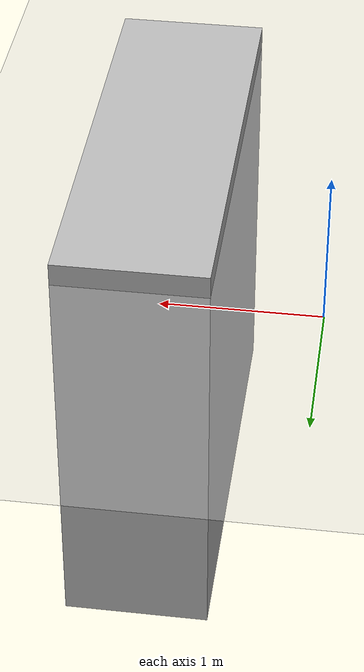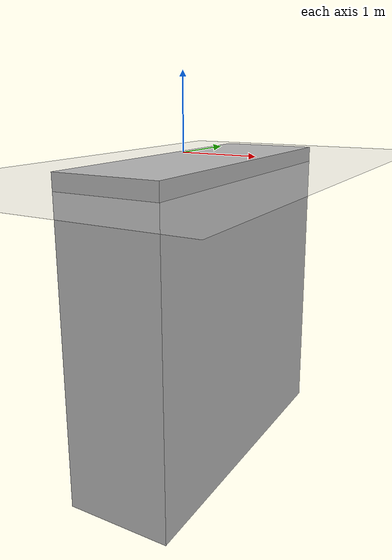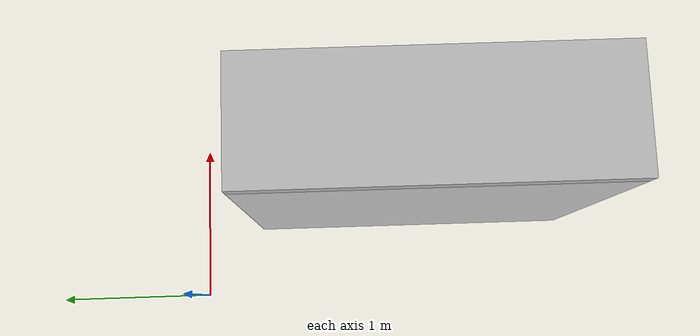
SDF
<?xml version="1.0" ?>
<sdf version='1.6'>
  <world name='default'>
    <gui>
      <plugin name="keyboard" filename="libKeyboardGUIPlugin.so"/>
    </gui>

    <light name='sun' type='directional'>
      <cast_shadows>1</cast_shadows>
      <pose frame=''>0 0 10 0 -0 0</pose>
      <diffuse>0.8 0.8 0.8 1</diffuse>
      <specular>0.2 0.2 0.2 1</specular>
      <attenuation>
        <range>1000</range>
        <constant>0.9</constant>
        <linear>0.01</linear>
        <quadratic>0.001</quadratic>
      </attenuation>
      <direction>-0.5 0.1 -0.9</direction>
    </light>

    <model name='ground_plane'>
      <static>1</static>
      <link name='link'>
        <collision name='collision'>
          <geometry>
            <plane>
              <normal>0 0 1</normal>
              <size>100 100</size>
            </plane>
          </geometry>
          <surface>
            <friction>
              <ode>
                <mu>100</mu>
                <mu2>50</mu2>
              </ode>
              <torsional>
                <ode/>
              </torsional>
            </friction>
            <contact>
              <ode/>
            </contact>
            <bounce/>
          </surface>
          <max_contacts>10</max_contacts>
        </collision>
        <visual name='visual'>
          <cast_shadows>0</cast_shadows>
          <geometry>
            <plane>
              <normal>0 0 1</normal>
              <size>100 100</size>
            </plane>
          </geometry>
          <material>
            <script>
              <uri>file://media/materials/scripts/gazebo.material</uri>
              <name>Gazebo/Grey</name>
            </script>
          </material>
        </visual>
        <self_collide>0</self_collide>
        <kinematic>0</kinematic>
      </link>
    </model>

    <model name='brick_box_3x1x3'>
      <static>1</static>
      <!-- Step height: 15cm       -->
      <pose frame=''>1.2 -1.6 -1.35 -1.57127 -1.571270 0</pose>
      <link name='chassis'>
        <collision name='collision'>
          <geometry>
            <box>
              <size>3 1 3</size>
            </box>
          </geometry>
          <max_contacts>10</max_contacts>
          <surface>
            <contact>
              <ode/>
            </contact>
            <bounce/>
            <friction>
              <torsional>
                <ode/>
              </torsional>
              <ode/>
            </friction>
          </surface>
        </collision>
        <visual name='visual'>
          <geometry>
            <mesh>
              <uri>model://brick_box_3x1x3/meshes/simple_box.dae</uri>
              <scale>3 1 3</scale>
            </mesh>
          </geometry>
          <material>
            <script>
              <uri>model://brick_box_3x1x3/materials/scripts</uri>
              <uri>model://brick_box_3x1x3/materials/textures</uri>
              <name>BrickBox/Diffuse</name>
            </script>
          </material>
        </visual>
        <self_collide>0</self_collide>
        <kinematic>0</kinematic>
      </link>
    </model>
  </world>
</sdf>
